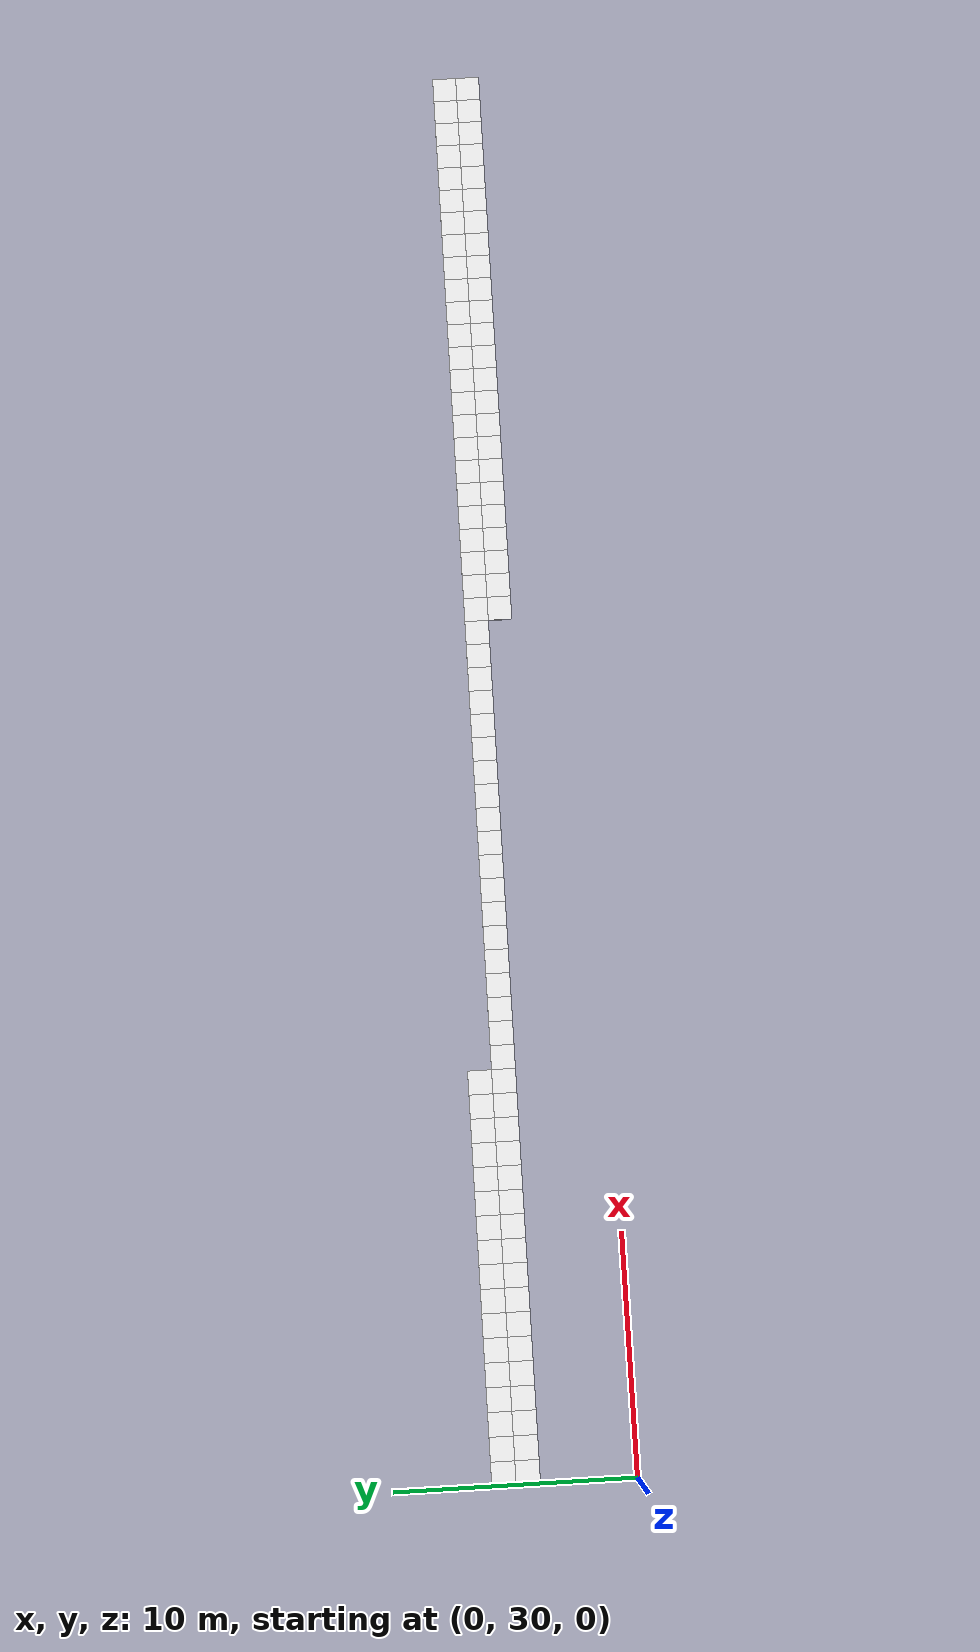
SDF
<sdf version="1.6">
 <world name="grid_world">
  <model name="cell_36_33">
   <static>true</static>
   <link name="link">
    <collision name="collision"><geometry><box><size>1 1 0.1</size></box></geometry></collision>
    <visual name="visual">
     <geometry><box><size>1 1 0.1</size></box></geometry>
     <material>
      <script><uri>file://media/materials/scripts/gazebo.material</uri><name>Gazebo/White</name></script>
     </material>
    </visual>
    <pose>36.5 33.5 0.05 0 0 0</pose>
   </link>
  </model>
  <model name="cell_37_33">
   <static>true</static>
   <link name="link">
    <collision name="collision"><geometry><box><size>1 1 0.1</size></box></geometry></collision>
    <visual name="visual">
     <geometry><box><size>1 1 0.1</size></box></geometry>
     <material>
      <script><uri>file://media/materials/scripts/gazebo.material</uri><name>Gazebo/White</name></script>
     </material>
    </visual>
    <pose>37.5 33.5 0.05 0 0 0</pose>
   </link>
  </model>
  <model name="cell_38_33">
   <static>true</static>
   <link name="link">
    <collision name="collision"><geometry><box><size>1 1 0.1</size></box></geometry></collision>
    <visual name="visual">
     <geometry><box><size>1 1 0.1</size></box></geometry>
     <material>
      <script><uri>file://media/materials/scripts/gazebo.material</uri><name>Gazebo/White</name></script>
     </material>
    </visual>
    <pose>38.5 33.5 0.05 0 0 0</pose>
   </link>
  </model>
  <model name="cell_39_33">
   <static>true</static>
   <link name="link">
    <collision name="collision"><geometry><box><size>1 1 0.1</size></box></geometry></collision>
    <visual name="visual">
     <geometry><box><size>1 1 0.1</size></box></geometry>
     <material>
      <script><uri>file://media/materials/scripts/gazebo.material</uri><name>Gazebo/White</name></script>
     </material>
    </visual>
    <pose>39.5 33.5 0.05 0 0 0</pose>
   </link>
  </model>
  <model name="cell_40_33">
   <static>true</static>
   <link name="link">
    <collision name="collision"><geometry><box><size>1 1 0.1</size></box></geometry></collision>
    <visual name="visual">
     <geometry><box><size>1 1 0.1</size></box></geometry>
     <material>
      <script><uri>file://media/materials/scripts/gazebo.material</uri><name>Gazebo/White</name></script>
     </material>
    </visual>
    <pose>40.5 33.5 0.05 0 0 0</pose>
   </link>
  </model>
  <model name="cell_41_33">
   <static>true</static>
   <link name="link">
    <collision name="collision"><geometry><box><size>1 1 0.1</size></box></geometry></collision>
    <visual name="visual">
     <geometry><box><size>1 1 0.1</size></box></geometry>
     <material>
      <script><uri>file://media/materials/scripts/gazebo.material</uri><name>Gazebo/White</name></script>
     </material>
    </visual>
    <pose>41.5 33.5 0.05 0 0 0</pose>
   </link>
  </model>
  <model name="cell_42_33">
   <static>true</static>
   <link name="link">
    <collision name="collision"><geometry><box><size>1 1 0.1</size></box></geometry></collision>
    <visual name="visual">
     <geometry><box><size>1 1 0.1</size></box></geometry>
     <material>
      <script><uri>file://media/materials/scripts/gazebo.material</uri><name>Gazebo/White</name></script>
     </material>
    </visual>
    <pose>42.5 33.5 0.05 0 0 0</pose>
   </link>
  </model>
  <model name="cell_43_33">
   <static>true</static>
   <link name="link">
    <collision name="collision"><geometry><box><size>1 1 0.1</size></box></geometry></collision>
    <visual name="visual">
     <geometry><box><size>1 1 0.1</size></box></geometry>
     <material>
      <script><uri>file://media/materials/scripts/gazebo.material</uri><name>Gazebo/White</name></script>
     </material>
    </visual>
    <pose>43.5 33.5 0.05 0 0 0</pose>
   </link>
  </model>
  <model name="cell_44_33">
   <static>true</static>
   <link name="link">
    <collision name="collision"><geometry><box><size>1 1 0.1</size></box></geometry></collision>
    <visual name="visual">
     <geometry><box><size>1 1 0.1</size></box></geometry>
     <material>
      <script><uri>file://media/materials/scripts/gazebo.material</uri><name>Gazebo/White</name></script>
     </material>
    </visual>
    <pose>44.5 33.5 0.05 0 0 0</pose>
   </link>
  </model>
  <model name="cell_45_33">
   <static>true</static>
   <link name="link">
    <collision name="collision"><geometry><box><size>1 1 0.1</size></box></geometry></collision>
    <visual name="visual">
     <geometry><box><size>1 1 0.1</size></box></geometry>
     <material>
      <script><uri>file://media/materials/scripts/gazebo.material</uri><name>Gazebo/White</name></script>
     </material>
    </visual>
    <pose>45.5 33.5 0.05 0 0 0</pose>
   </link>
  </model>
  <model name="cell_46_33">
   <static>true</static>
   <link name="link">
    <collision name="collision"><geometry><box><size>1 1 0.1</size></box></geometry></collision>
    <visual name="visual">
     <geometry><box><size>1 1 0.1</size></box></geometry>
     <material>
      <script><uri>file://media/materials/scripts/gazebo.material</uri><name>Gazebo/White</name></script>
     </material>
    </visual>
    <pose>46.5 33.5 0.05 0 0 0</pose>
   </link>
  </model>
  <model name="cell_47_33">
   <static>true</static>
   <link name="link">
    <collision name="collision"><geometry><box><size>1 1 0.1</size></box></geometry></collision>
    <visual name="visual">
     <geometry><box><size>1 1 0.1</size></box></geometry>
     <material>
      <script><uri>file://media/materials/scripts/gazebo.material</uri><name>Gazebo/White</name></script>
     </material>
    </visual>
    <pose>47.5 33.5 0.05 0 0 0</pose>
   </link>
  </model>
  <model name="cell_48_33">
   <static>true</static>
   <link name="link">
    <collision name="collision"><geometry><box><size>1 1 0.1</size></box></geometry></collision>
    <visual name="visual">
     <geometry><box><size>1 1 0.1</size></box></geometry>
     <material>
      <script><uri>file://media/materials/scripts/gazebo.material</uri><name>Gazebo/White</name></script>
     </material>
    </visual>
    <pose>48.5 33.5 0.05 0 0 0</pose>
   </link>
  </model>
  <model name="cell_49_33">
   <static>true</static>
   <link name="link">
    <collision name="collision"><geometry><box><size>1 1 0.1</size></box></geometry></collision>
    <visual name="visual">
     <geometry><box><size>1 1 0.1</size></box></geometry>
     <material>
      <script><uri>file://media/materials/scripts/gazebo.material</uri><name>Gazebo/White</name></script>
     </material>
    </visual>
    <pose>49.5 33.5 0.05 0 0 0</pose>
   </link>
  </model>
  <model name="cell_50_33">
   <static>true</static>
   <link name="link">
    <collision name="collision"><geometry><box><size>1 1 0.1</size></box></geometry></collision>
    <visual name="visual">
     <geometry><box><size>1 1 0.1</size></box></geometry>
     <material>
      <script><uri>file://media/materials/scripts/gazebo.material</uri><name>Gazebo/White</name></script>
     </material>
    </visual>
    <pose>50.5 33.5 0.05 0 0 0</pose>
   </link>
  </model>
  <model name="cell_51_33">
   <static>true</static>
   <link name="link">
    <collision name="collision"><geometry><box><size>1 1 0.1</size></box></geometry></collision>
    <visual name="visual">
     <geometry><box><size>1 1 0.1</size></box></geometry>
     <material>
      <script><uri>file://media/materials/scripts/gazebo.material</uri><name>Gazebo/White</name></script>
     </material>
    </visual>
    <pose>51.5 33.5 0.05 0 0 0</pose>
   </link>
  </model>
  <model name="cell_52_33">
   <static>true</static>
   <link name="link">
    <collision name="collision"><geometry><box><size>1 1 0.1</size></box></geometry></collision>
    <visual name="visual">
     <geometry><box><size>1 1 0.1</size></box></geometry>
     <material>
      <script><uri>file://media/materials/scripts/gazebo.material</uri><name>Gazebo/White</name></script>
     </material>
    </visual>
    <pose>52.5 33.5 0.05 0 0 0</pose>
   </link>
  </model>
  <model name="cell_53_33">
   <static>true</static>
   <link name="link">
    <collision name="collision"><geometry><box><size>1 1 0.1</size></box></geometry></collision>
    <visual name="visual">
     <geometry><box><size>1 1 0.1</size></box></geometry>
     <material>
      <script><uri>file://media/materials/scripts/gazebo.material</uri><name>Gazebo/White</name></script>
     </material>
    </visual>
    <pose>53.5 33.5 0.05 0 0 0</pose>
   </link>
  </model>
  <model name="cell_54_33">
   <static>true</static>
   <link name="link">
    <collision name="collision"><geometry><box><size>1 1 0.1</size></box></geometry></collision>
    <visual name="visual">
     <geometry><box><size>1 1 0.1</size></box></geometry>
     <material>
      <script><uri>file://media/materials/scripts/gazebo.material</uri><name>Gazebo/White</name></script>
     </material>
    </visual>
    <pose>54.5 33.5 0.05 0 0 0</pose>
   </link>
  </model>
  <model name="cell_55_33">
   <static>true</static>
   <link name="link">
    <collision name="collision"><geometry><box><size>1 1 0.1</size></box></geometry></collision>
    <visual name="visual">
     <geometry><box><size>1 1 0.1</size></box></geometry>
     <material>
      <script><uri>file://media/materials/scripts/gazebo.material</uri><name>Gazebo/White</name></script>
     </material>
    </visual>
    <pose>55.5 33.5 0.05 0 0 0</pose>
   </link>
  </model>
  <model name="cell_56_33">
   <static>true</static>
   <link name="link">
    <collision name="collision"><geometry><box><size>1 1 0.1</size></box></geometry></collision>
    <visual name="visual">
     <geometry><box><size>1 1 0.1</size></box></geometry>
     <material>
      <script><uri>file://media/materials/scripts/gazebo.material</uri><name>Gazebo/White</name></script>
     </material>
    </visual>
    <pose>56.5 33.5 0.05 0 0 0</pose>
   </link>
  </model>
  <model name="cell_57_33">
   <static>true</static>
   <link name="link">
    <collision name="collision"><geometry><box><size>1 1 0.1</size></box></geometry></collision>
    <visual name="visual">
     <geometry><box><size>1 1 0.1</size></box></geometry>
     <material>
      <script><uri>file://media/materials/scripts/gazebo.material</uri><name>Gazebo/White</name></script>
     </material>
    </visual>
    <pose>57.5 33.5 0.05 0 0 0</pose>
   </link>
  </model>
  <model name="cell_58_33">
   <static>true</static>
   <link name="link">
    <collision name="collision"><geometry><box><size>1 1 0.1</size></box></geometry></collision>
    <visual name="visual">
     <geometry><box><size>1 1 0.1</size></box></geometry>
     <material>
      <script><uri>file://media/materials/scripts/gazebo.material</uri><name>Gazebo/White</name></script>
     </material>
    </visual>
    <pose>58.5 33.5 0.05 0 0 0</pose>
   </link>
  </model>
  <model name="cell_59_33">
   <static>true</static>
   <link name="link">
    <collision name="collision"><geometry><box><size>1 1 0.1</size></box></geometry></collision>
    <visual name="visual">
     <geometry><box><size>1 1 0.1</size></box></geometry>
     <material>
      <script><uri>file://media/materials/scripts/gazebo.material</uri><name>Gazebo/White</name></script>
     </material>
    </visual>
    <pose>59.5 33.5 0.05 0 0 0</pose>
   </link>
  </model>
  <model name="cell_0_34">
   <static>true</static>
   <link name="link">
    <collision name="collision"><geometry><box><size>1 1 0.1</size></box></geometry></collision>
    <visual name="visual">
     <geometry><box><size>1 1 0.1</size></box></geometry>
     <material>
      <script><uri>file://media/materials/scripts/gazebo.material</uri><name>Gazebo/White</name></script>
     </material>
    </visual>
    <pose>0.5 34.5 0.05 0 0 0</pose>
   </link>
  </model>
  <model name="cell_1_34">
   <static>true</static>
   <link name="link">
    <collision name="collision"><geometry><box><size>1 1 0.1</size></box></geometry></collision>
    <visual name="visual">
     <geometry><box><size>1 1 0.1</size></box></geometry>
     <material>
      <script><uri>file://media/materials/scripts/gazebo.material</uri><name>Gazebo/White</name></script>
     </material>
    </visual>
    <pose>1.5 34.5 0.05 0 0 0</pose>
   </link>
  </model>
  <model name="cell_2_34">
   <static>true</static>
   <link name="link">
    <collision name="collision"><geometry><box><size>1 1 0.1</size></box></geometry></collision>
    <visual name="visual">
     <geometry><box><size>1 1 0.1</size></box></geometry>
     <material>
      <script><uri>file://media/materials/scripts/gazebo.material</uri><name>Gazebo/White</name></script>
     </material>
    </visual>
    <pose>2.5 34.5 0.05 0 0 0</pose>
   </link>
  </model>
  <model name="cell_3_34">
   <static>true</static>
   <link name="link">
    <collision name="collision"><geometry><box><size>1 1 0.1</size></box></geometry></collision>
    <visual name="visual">
     <geometry><box><size>1 1 0.1</size></box></geometry>
     <material>
      <script><uri>file://media/materials/scripts/gazebo.material</uri><name>Gazebo/White</name></script>
     </material>
    </visual>
    <pose>3.5 34.5 0.05 0 0 0</pose>
   </link>
  </model>
  <model name="cell_4_34">
   <static>true</static>
   <link name="link">
    <collision name="collision"><geometry><box><size>1 1 0.1</size></box></geometry></collision>
    <visual name="visual">
     <geometry><box><size>1 1 0.1</size></box></geometry>
     <material>
      <script><uri>file://media/materials/scripts/gazebo.material</uri><name>Gazebo/White</name></script>
     </material>
    </visual>
    <pose>4.5 34.5 0.05 0 0 0</pose>
   </link>
  </model>
  <model name="cell_5_34">
   <static>true</static>
   <link name="link">
    <collision name="collision"><geometry><box><size>1 1 0.1</size></box></geometry></collision>
    <visual name="visual">
     <geometry><box><size>1 1 0.1</size></box></geometry>
     <material>
      <script><uri>file://media/materials/scripts/gazebo.material</uri><name>Gazebo/White</name></script>
     </material>
    </visual>
    <pose>5.5 34.5 0.05 0 0 0</pose>
   </link>
  </model>
  <model name="cell_6_34">
   <static>true</static>
   <link name="link">
    <collision name="collision"><geometry><box><size>1 1 0.1</size></box></geometry></collision>
    <visual name="visual">
     <geometry><box><size>1 1 0.1</size></box></geometry>
     <material>
      <script><uri>file://media/materials/scripts/gazebo.material</uri><name>Gazebo/White</name></script>
     </material>
    </visual>
    <pose>6.5 34.5 0.05 0 0 0</pose>
   </link>
  </model>
  <model name="cell_7_34">
   <static>true</static>
   <link name="link">
    <collision name="collision"><geometry><box><size>1 1 0.1</size></box></geometry></collision>
    <visual name="visual">
     <geometry><box><size>1 1 0.1</size></box></geometry>
     <material>
      <script><uri>file://media/materials/scripts/gazebo.material</uri><name>Gazebo/White</name></script>
     </material>
    </visual>
    <pose>7.5 34.5 0.05 0 0 0</pose>
   </link>
  </model>
  <model name="cell_8_34">
   <static>true</static>
   <link name="link">
    <collision name="collision"><geometry><box><size>1 1 0.1</size></box></geometry></collision>
    <visual name="visual">
     <geometry><box><size>1 1 0.1</size></box></geometry>
     <material>
      <script><uri>file://media/materials/scripts/gazebo.material</uri><name>Gazebo/White</name></script>
     </material>
    </visual>
    <pose>8.5 34.5 0.05 0 0 0</pose>
   </link>
  </model>
  <model name="cell_9_34">
   <static>true</static>
   <link name="link">
    <collision name="collision"><geometry><box><size>1 1 0.1</size></box></geometry></collision>
    <visual name="visual">
     <geometry><box><size>1 1 0.1</size></box></geometry>
     <material>
      <script><uri>file://media/materials/scripts/gazebo.material</uri><name>Gazebo/White</name></script>
     </material>
    </visual>
    <pose>9.5 34.5 0.05 0 0 0</pose>
   </link>
  </model>
  <model name="cell_10_34">
   <static>true</static>
   <link name="link">
    <collision name="collision"><geometry><box><size>1 1 0.1</size></box></geometry></collision>
    <visual name="visual">
     <geometry><box><size>1 1 0.1</size></box></geometry>
     <material>
      <script><uri>file://media/materials/scripts/gazebo.material</uri><name>Gazebo/White</name></script>
     </material>
    </visual>
    <pose>10.5 34.5 0.05 0 0 0</pose>
   </link>
  </model>
  <model name="cell_11_34">
   <static>true</static>
   <link name="link">
    <collision name="collision"><geometry><box><size>1 1 0.1</size></box></geometry></collision>
    <visual name="visual">
     <geometry><box><size>1 1 0.1</size></box></geometry>
     <material>
      <script><uri>file://media/materials/scripts/gazebo.material</uri><name>Gazebo/White</name></script>
     </material>
    </visual>
    <pose>11.5 34.5 0.05 0 0 0</pose>
   </link>
  </model>
  <model name="cell_12_34">
   <static>true</static>
   <link name="link">
    <collision name="collision"><geometry><box><size>1 1 0.1</size></box></geometry></collision>
    <visual name="visual">
     <geometry><box><size>1 1 0.1</size></box></geometry>
     <material>
      <script><uri>file://media/materials/scripts/gazebo.material</uri><name>Gazebo/White</name></script>
     </material>
    </visual>
    <pose>12.5 34.5 0.05 0 0 0</pose>
   </link>
  </model>
  <model name="cell_13_34">
   <static>true</static>
   <link name="link">
    <collision name="collision"><geometry><box><size>1 1 0.1</size></box></geometry></collision>
    <visual name="visual">
     <geometry><box><size>1 1 0.1</size></box></geometry>
     <material>
      <script><uri>file://media/materials/scripts/gazebo.material</uri><name>Gazebo/White</name></script>
     </material>
    </visual>
    <pose>13.5 34.5 0.05 0 0 0</pose>
   </link>
  </model>
  <model name="cell_14_34">
   <static>true</static>
   <link name="link">
    <collision name="collision"><geometry><box><size>1 1 0.1</size></box></geometry></collision>
    <visual name="visual">
     <geometry><box><size>1 1 0.1</size></box></geometry>
     <material>
      <script><uri>file://media/materials/scripts/gazebo.material</uri><name>Gazebo/White</name></script>
     </material>
    </visual>
    <pose>14.5 34.5 0.05 0 0 0</pose>
   </link>
  </model>
  <model name="cell_15_34">
   <static>true</static>
   <link name="link">
    <collision name="collision"><geometry><box><size>1 1 0.1</size></box></geometry></collision>
    <visual name="visual">
     <geometry><box><size>1 1 0.1</size></box></geometry>
     <material>
      <script><uri>file://media/materials/scripts/gazebo.material</uri><name>Gazebo/White</name></script>
     </material>
    </visual>
    <pose>15.5 34.5 0.05 0 0 0</pose>
   </link>
  </model>
  <model name="cell_16_34">
   <static>true</static>
   <link name="link">
    <collision name="collision"><geometry><box><size>1 1 0.1</size></box></geometry></collision>
    <visual name="visual">
     <geometry><box><size>1 1 0.1</size></box></geometry>
     <material>
      <script><uri>file://media/materials/scripts/gazebo.material</uri><name>Gazebo/White</name></script>
     </material>
    </visual>
    <pose>16.5 34.5 0.05 0 0 0</pose>
   </link>
  </model>
  <model name="cell_17_34">
   <static>true</static>
   <link name="link">
    <collision name="collision"><geometry><box><size>1 1 0.1</size></box></geometry></collision>
    <visual name="visual">
     <geometry><box><size>1 1 0.1</size></box></geometry>
     <material>
      <script><uri>file://media/materials/scripts/gazebo.material</uri><name>Gazebo/White</name></script>
     </material>
    </visual>
    <pose>17.5 34.5 0.05 0 0 0</pose>
   </link>
  </model>
  <model name="cell_18_34">
   <static>true</static>
   <link name="link">
    <collision name="collision"><geometry><box><size>1 1 0.1</size></box></geometry></collision>
    <visual name="visual">
     <geometry><box><size>1 1 0.1</size></box></geometry>
     <material>
      <script><uri>file://media/materials/scripts/gazebo.material</uri><name>Gazebo/White</name></script>
     </material>
    </visual>
    <pose>18.5 34.5 0.05 0 0 0</pose>
   </link>
  </model>
  <model name="cell_19_34">
   <static>true</static>
   <link name="link">
    <collision name="collision"><geometry><box><size>1 1 0.1</size></box></geometry></collision>
    <visual name="visual">
     <geometry><box><size>1 1 0.1</size></box></geometry>
     <material>
      <script><uri>file://media/materials/scripts/gazebo.material</uri><name>Gazebo/White</name></script>
     </material>
    </visual>
    <pose>19.5 34.5 0.05 0 0 0</pose>
   </link>
  </model>
  <model name="cell_20_34">
   <static>true</static>
   <link name="link">
    <collision name="collision"><geometry><box><size>1 1 0.1</size></box></geometry></collision>
    <visual name="visual">
     <geometry><box><size>1 1 0.1</size></box></geometry>
     <material>
      <script><uri>file://media/materials/scripts/gazebo.material</uri><name>Gazebo/White</name></script>
     </material>
    </visual>
    <pose>20.5 34.5 0.05 0 0 0</pose>
   </link>
  </model>
  <model name="cell_21_34">
   <static>true</static>
   <link name="link">
    <collision name="collision"><geometry><box><size>1 1 0.1</size></box></geometry></collision>
    <visual name="visual">
     <geometry><box><size>1 1 0.1</size></box></geometry>
     <material>
      <script><uri>file://media/materials/scripts/gazebo.material</uri><name>Gazebo/White</name></script>
     </material>
    </visual>
    <pose>21.5 34.5 0.05 0 0 0</pose>
   </link>
  </model>
  <model name="cell_22_34">
   <static>true</static>
   <link name="link">
    <collision name="collision"><geometry><box><size>1 1 0.1</size></box></geometry></collision>
    <visual name="visual">
     <geometry><box><size>1 1 0.1</size></box></geometry>
     <material>
      <script><uri>file://media/materials/scripts/gazebo.material</uri><name>Gazebo/White</name></script>
     </material>
    </visual>
    <pose>22.5 34.5 0.05 0 0 0</pose>
   </link>
  </model>
  <model name="cell_23_34">
   <static>true</static>
   <link name="link">
    <collision name="collision"><geometry><box><size>1 1 0.1</size></box></geometry></collision>
    <visual name="visual">
     <geometry><box><size>1 1 0.1</size></box></geometry>
     <material>
      <script><uri>file://media/materials/scripts/gazebo.material</uri><name>Gazebo/White</name></script>
     </material>
    </visual>
    <pose>23.5 34.5 0.05 0 0 0</pose>
   </link>
  </model>
  <model name="cell_24_34">
   <static>true</static>
   <link name="link">
    <collision name="collision"><geometry><box><size>1 1 0.1</size></box></geometry></collision>
    <visual name="visual">
     <geometry><box><size>1 1 0.1</size></box></geometry>
     <material>
      <script><uri>file://media/materials/scripts/gazebo.material</uri><name>Gazebo/White</name></script>
     </material>
    </visual>
    <pose>24.5 34.5 0.05 0 0 0</pose>
   </link>
  </model>
  <model name="cell_25_34">
   <static>true</static>
   <link name="link">
    <collision name="collision"><geometry><box><size>1 1 0.1</size></box></geometry></collision>
    <visual name="visual">
     <geometry><box><size>1 1 0.1</size></box></geometry>
     <material>
      <script><uri>file://media/materials/scripts/gazebo.material</uri><name>Gazebo/White</name></script>
     </material>
    </visual>
    <pose>25.5 34.5 0.05 0 0 0</pose>
   </link>
  </model>
  <model name="cell_26_34">
   <static>true</static>
   <link name="link">
    <collision name="collision"><geometry><box><size>1 1 0.1</size></box></geometry></collision>
    <visual name="visual">
     <geometry><box><size>1 1 0.1</size></box></geometry>
     <material>
      <script><uri>file://media/materials/scripts/gazebo.material</uri><name>Gazebo/White</name></script>
     </material>
    </visual>
    <pose>26.5 34.5 0.05 0 0 0</pose>
   </link>
  </model>
  <model name="cell_27_34">
   <static>true</static>
   <link name="link">
    <collision name="collision"><geometry><box><size>1 1 0.1</size></box></geometry></collision>
    <visual name="visual">
     <geometry><box><size>1 1 0.1</size></box></geometry>
     <material>
      <script><uri>file://media/materials/scripts/gazebo.material</uri><name>Gazebo/White</name></script>
     </material>
    </visual>
    <pose>27.5 34.5 0.05 0 0 0</pose>
   </link>
  </model>
  <model name="cell_28_34">
   <static>true</static>
   <link name="link">
    <collision name="collision"><geometry><box><size>1 1 0.1</size></box></geometry></collision>
    <visual name="visual">
     <geometry><box><size>1 1 0.1</size></box></geometry>
     <material>
      <script><uri>file://media/materials/scripts/gazebo.material</uri><name>Gazebo/White</name></script>
     </material>
    </visual>
    <pose>28.5 34.5 0.05 0 0 0</pose>
   </link>
  </model>
  <model name="cell_29_34">
   <static>true</static>
   <link name="link">
    <collision name="collision"><geometry><box><size>1 1 0.1</size></box></geometry></collision>
    <visual name="visual">
     <geometry><box><size>1 1 0.1</size></box></geometry>
     <material>
      <script><uri>file://media/materials/scripts/gazebo.material</uri><name>Gazebo/White</name></script>
     </material>
    </visual>
    <pose>29.5 34.5 0.05 0 0 0</pose>
   </link>
  </model>
  <model name="cell_30_34">
   <static>true</static>
   <link name="link">
    <collision name="collision"><geometry><box><size>1 1 0.1</size></box></geometry></collision>
    <visual name="visual">
     <geometry><box><size>1 1 0.1</size></box></geometry>
     <material>
      <script><uri>file://media/materials/scripts/gazebo.material</uri><name>Gazebo/White</name></script>
     </material>
    </visual>
    <pose>30.5 34.5 0.05 0 0 0</pose>
   </link>
  </model>
  <model name="cell_31_34">
   <static>true</static>
   <link name="link">
    <collision name="collision"><geometry><box><size>1 1 0.1</size></box></geometry></collision>
    <visual name="visual">
     <geometry><box><size>1 1 0.1</size></box></geometry>
     <material>
      <script><uri>file://media/materials/scripts/gazebo.material</uri><name>Gazebo/White</name></script>
     </material>
    </visual>
    <pose>31.5 34.5 0.05 0 0 0</pose>
   </link>
  </model>
  <model name="cell_32_34">
   <static>true</static>
   <link name="link">
    <collision name="collision"><geometry><box><size>1 1 0.1</size></box></geometry></collision>
    <visual name="visual">
     <geometry><box><size>1 1 0.1</size></box></geometry>
     <material>
      <script><uri>file://media/materials/scripts/gazebo.material</uri><name>Gazebo/White</name></script>
     </material>
    </visual>
    <pose>32.5 34.5 0.05 0 0 0</pose>
   </link>
  </model>
  <model name="cell_33_34">
   <static>true</static>
   <link name="link">
    <collision name="collision"><geometry><box><size>1 1 0.1</size></box></geometry></collision>
    <visual name="visual">
     <geometry><box><size>1 1 0.1</size></box></geometry>
     <material>
      <script><uri>file://media/materials/scripts/gazebo.material</uri><name>Gazebo/White</name></script>
     </material>
    </visual>
    <pose>33.5 34.5 0.05 0 0 0</pose>
   </link>
  </model>
  <model name="cell_34_34">
   <static>true</static>
   <link name="link">
    <collision name="collision"><geometry><box><size>1 1 0.1</size></box></geometry></collision>
    <visual name="visual">
     <geometry><box><size>1 1 0.1</size></box></geometry>
     <material>
      <script><uri>file://media/materials/scripts/gazebo.material</uri><name>Gazebo/White</name></script>
     </material>
    </visual>
    <pose>34.5 34.5 0.05 0 0 0</pose>
   </link>
  </model>
  <model name="cell_35_34">
   <static>true</static>
   <link name="link">
    <collision name="collision"><geometry><box><size>1 1 0.1</size></box></geometry></collision>
    <visual name="visual">
     <geometry><box><size>1 1 0.1</size></box></geometry>
     <material>
      <script><uri>file://media/materials/scripts/gazebo.material</uri><name>Gazebo/White</name></script>
     </material>
    </visual>
    <pose>35.5 34.5 0.05 0 0 0</pose>
   </link>
  </model>
  <model name="cell_36_34">
   <static>true</static>
   <link name="link">
    <collision name="collision"><geometry><box><size>1 1 0.1</size></box></geometry></collision>
    <visual name="visual">
     <geometry><box><size>1 1 0.1</size></box></geometry>
     <material>
      <script><uri>file://media/materials/scripts/gazebo.material</uri><name>Gazebo/White</name></script>
     </material>
    </visual>
    <pose>36.5 34.5 0.05 0 0 0</pose>
   </link>
  </model>
  <model name="cell_37_34">
   <static>true</static>
   <link name="link">
    <collision name="collision"><geometry><box><size>1 1 0.1</size></box></geometry></collision>
    <visual name="visual">
     <geometry><box><size>1 1 0.1</size></box></geometry>
     <material>
      <script><uri>file://media/materials/scripts/gazebo.material</uri><name>Gazebo/White</name></script>
     </material>
    </visual>
    <pose>37.5 34.5 0.05 0 0 0</pose>
   </link>
  </model>
  <model name="cell_38_34">
   <static>true</static>
   <link name="link">
    <collision name="collision"><geometry><box><size>1 1 0.1</size></box></geometry></collision>
    <visual name="visual">
     <geometry><box><size>1 1 0.1</size></box></geometry>
     <material>
      <script><uri>file://media/materials/scripts/gazebo.material</uri><name>Gazebo/White</name></script>
     </material>
    </visual>
    <pose>38.5 34.5 0.05 0 0 0</pose>
   </link>
  </model>
  <model name="cell_39_34">
   <static>true</static>
   <link name="link">
    <collision name="collision"><geometry><box><size>1 1 0.1</size></box></geometry></collision>
    <visual name="visual">
     <geometry><box><size>1 1 0.1</size></box></geometry>
     <material>
      <script><uri>file://media/materials/scripts/gazebo.material</uri><name>Gazebo/White</name></script>
     </material>
    </visual>
    <pose>39.5 34.5 0.05 0 0 0</pose>
   </link>
  </model>
  <model name="cell_40_34">
   <static>true</static>
   <link name="link">
    <collision name="collision"><geometry><box><size>1 1 0.1</size></box></geometry></collision>
    <visual name="visual">
     <geometry><box><size>1 1 0.1</size></box></geometry>
     <material>
      <script><uri>file://media/materials/scripts/gazebo.material</uri><name>Gazebo/White</name></script>
     </material>
    </visual>
    <pose>40.5 34.5 0.05 0 0 0</pose>
   </link>
  </model>
  <model name="cell_41_34">
   <static>true</static>
   <link name="link">
    <collision name="collision"><geometry><box><size>1 1 0.1</size></box></geometry></collision>
    <visual name="visual">
     <geometry><box><size>1 1 0.1</size></box></geometry>
     <material>
      <script><uri>file://media/materials/scripts/gazebo.material</uri><name>Gazebo/White</name></script>
     </material>
    </visual>
    <pose>41.5 34.5 0.05 0 0 0</pose>
   </link>
  </model>
  <model name="cell_42_34">
   <static>true</static>
   <link name="link">
    <collision name="collision"><geometry><box><size>1 1 0.1</size></box></geometry></collision>
    <visual name="visual">
     <geometry><box><size>1 1 0.1</size></box></geometry>
     <material>
      <script><uri>file://media/materials/scripts/gazebo.material</uri><name>Gazebo/White</name></script>
     </material>
    </visual>
    <pose>42.5 34.5 0.05 0 0 0</pose>
   </link>
  </model>
  <model name="cell_43_34">
   <static>true</static>
   <link name="link">
    <collision name="collision"><geometry><box><size>1 1 0.1</size></box></geometry></collision>
    <visual name="visual">
     <geometry><box><size>1 1 0.1</size></box></geometry>
     <material>
      <script><uri>file://media/materials/scripts/gazebo.material</uri><name>Gazebo/White</name></script>
     </material>
    </visual>
    <pose>43.5 34.5 0.05 0 0 0</pose>
   </link>
  </model>
  <model name="cell_44_34">
   <static>true</static>
   <link name="link">
    <collision name="collision"><geometry><box><size>1 1 0.1</size></box></geometry></collision>
    <visual name="visual">
     <geometry><box><size>1 1 0.1</size></box></geometry>
     <material>
      <script><uri>file://media/materials/scripts/gazebo.material</uri><name>Gazebo/White</name></script>
     </material>
    </visual>
    <pose>44.5 34.5 0.05 0 0 0</pose>
   </link>
  </model>
  <model name="cell_45_34">
   <static>true</static>
   <link name="link">
    <collision name="collision"><geometry><box><size>1 1 0.1</size></box></geometry></collision>
    <visual name="visual">
     <geometry><box><size>1 1 0.1</size></box></geometry>
     <material>
      <script><uri>file://media/materials/scripts/gazebo.material</uri><name>Gazebo/White</name></script>
     </material>
    </visual>
    <pose>45.5 34.5 0.05 0 0 0</pose>
   </link>
  </model>
  <model name="cell_46_34">
   <static>true</static>
   <link name="link">
    <collision name="collision"><geometry><box><size>1 1 0.1</size></box></geometry></collision>
    <visual name="visual">
     <geometry><box><size>1 1 0.1</size></box></geometry>
     <material>
      <script><uri>file://media/materials/scripts/gazebo.material</uri><name>Gazebo/White</name></script>
     </material>
    </visual>
    <pose>46.5 34.5 0.05 0 0 0</pose>
   </link>
  </model>
  <model name="cell_47_34">
   <static>true</static>
   <link name="link">
    <collision name="collision"><geometry><box><size>1 1 0.1</size></box></geometry></collision>
    <visual name="visual">
     <geometry><box><size>1 1 0.1</size></box></geometry>
     <material>
      <script><uri>file://media/materials/scripts/gazebo.material</uri><name>Gazebo/White</name></script>
     </material>
    </visual>
    <pose>47.5 34.5 0.05 0 0 0</pose>
   </link>
  </model>
  <model name="cell_48_34">
   <static>true</static>
   <link name="link">
    <collision name="collision"><geometry><box><size>1 1 0.1</size></box></geometry></collision>
    <visual name="visual">
     <geometry><box><size>1 1 0.1</size></box></geometry>
     <material>
      <script><uri>file://media/materials/scripts/gazebo.material</uri><name>Gazebo/White</name></script>
     </material>
    </visual>
    <pose>48.5 34.5 0.05 0 0 0</pose>
   </link>
  </model>
  <model name="cell_49_34">
   <static>true</static>
   <link name="link">
    <collision name="collision"><geometry><box><size>1 1 0.1</size></box></geometry></collision>
    <visual name="visual">
     <geometry><box><size>1 1 0.1</size></box></geometry>
     <material>
      <script><uri>file://media/materials/scripts/gazebo.material</uri><name>Gazebo/White</name></script>
     </material>
    </visual>
    <pose>49.5 34.5 0.05 0 0 0</pose>
   </link>
  </model>
  <model name="cell_50_34">
   <static>true</static>
   <link name="link">
    <collision name="collision"><geometry><box><size>1 1 0.1</size></box></geometry></collision>
    <visual name="visual">
     <geometry><box><size>1 1 0.1</size></box></geometry>
     <material>
      <script><uri>file://media/materials/scripts/gazebo.material</uri><name>Gazebo/White</name></script>
     </material>
    </visual>
    <pose>50.5 34.5 0.05 0 0 0</pose>
   </link>
  </model>
  <model name="cell_51_34">
   <static>true</static>
   <link name="link">
    <collision name="collision"><geometry><box><size>1 1 0.1</size></box></geometry></collision>
    <visual name="visual">
     <geometry><box><size>1 1 0.1</size></box></geometry>
     <material>
      <script><uri>file://media/materials/scripts/gazebo.material</uri><name>Gazebo/White</name></script>
     </material>
    </visual>
    <pose>51.5 34.5 0.05 0 0 0</pose>
   </link>
  </model>
  <model name="cell_52_34">
   <static>true</static>
   <link name="link">
    <collision name="collision"><geometry><box><size>1 1 0.1</size></box></geometry></collision>
    <visual name="visual">
     <geometry><box><size>1 1 0.1</size></box></geometry>
     <material>
      <script><uri>file://media/materials/scripts/gazebo.material</uri><name>Gazebo/White</name></script>
     </material>
    </visual>
    <pose>52.5 34.5 0.05 0 0 0</pose>
   </link>
  </model>
  <model name="cell_53_34">
   <static>true</static>
   <link name="link">
    <collision name="collision"><geometry><box><size>1 1 0.1</size></box></geometry></collision>
    <visual name="visual">
     <geometry><box><size>1 1 0.1</size></box></geometry>
     <material>
      <script><uri>file://media/materials/scripts/gazebo.material</uri><name>Gazebo/White</name></script>
     </material>
    </visual>
    <pose>53.5 34.5 0.05 0 0 0</pose>
   </link>
  </model>
  <model name="cell_54_34">
   <static>true</static>
   <link name="link">
    <collision name="collision"><geometry><box><size>1 1 0.1</size></box></geometry></collision>
    <visual name="visual">
     <geometry><box><size>1 1 0.1</size></box></geometry>
     <material>
      <script><uri>file://media/materials/scripts/gazebo.material</uri><name>Gazebo/White</name></script>
     </material>
    </visual>
    <pose>54.5 34.5 0.05 0 0 0</pose>
   </link>
  </model>
  <model name="cell_55_34">
   <static>true</static>
   <link name="link">
    <collision name="collision"><geometry><box><size>1 1 0.1</size></box></geometry></collision>
    <visual name="visual">
     <geometry><box><size>1 1 0.1</size></box></geometry>
     <material>
      <script><uri>file://media/materials/scripts/gazebo.material</uri><name>Gazebo/White</name></script>
     </material>
    </visual>
    <pose>55.5 34.5 0.05 0 0 0</pose>
   </link>
  </model>
  <model name="cell_56_34">
   <static>true</static>
   <link name="link">
    <collision name="collision"><geometry><box><size>1 1 0.1</size></box></geometry></collision>
    <visual name="visual">
     <geometry><box><size>1 1 0.1</size></box></geometry>
     <material>
      <script><uri>file://media/materials/scripts/gazebo.material</uri><name>Gazebo/White</name></script>
     </material>
    </visual>
    <pose>56.5 34.5 0.05 0 0 0</pose>
   </link>
  </model>
  <model name="cell_57_34">
   <static>true</static>
   <link name="link">
    <collision name="collision"><geometry><box><size>1 1 0.1</size></box></geometry></collision>
    <visual name="visual">
     <geometry><box><size>1 1 0.1</size></box></geometry>
     <material>
      <script><uri>file://media/materials/scripts/gazebo.material</uri><name>Gazebo/White</name></script>
     </material>
    </visual>
    <pose>57.5 34.5 0.05 0 0 0</pose>
   </link>
  </model>
  <model name="cell_58_34">
   <static>true</static>
   <link name="link">
    <collision name="collision"><geometry><box><size>1 1 0.1</size></box></geometry></collision>
    <visual name="visual">
     <geometry><box><size>1 1 0.1</size></box></geometry>
     <material>
      <script><uri>file://media/materials/scripts/gazebo.material</uri><name>Gazebo/White</name></script>
     </material>
    </visual>
    <pose>58.5 34.5 0.05 0 0 0</pose>
   </link>
  </model>
  <model name="cell_59_34">
   <static>true</static>
   <link name="link">
    <collision name="collision"><geometry><box><size>1 1 0.1</size></box></geometry></collision>
    <visual name="visual">
     <geometry><box><size>1 1 0.1</size></box></geometry>
     <material>
      <script><uri>file://media/materials/scripts/gazebo.material</uri><name>Gazebo/White</name></script>
     </material>
    </visual>
    <pose>59.5 34.5 0.05 0 0 0</pose>
   </link>
  </model>
  <model name="cell_0_35">
   <static>true</static>
   <link name="link">
    <collision name="collision"><geometry><box><size>1 1 0.1</size></box></geometry></collision>
    <visual name="visual">
     <geometry><box><size>1 1 0.1</size></box></geometry>
     <material>
      <script><uri>file://media/materials/scripts/gazebo.material</uri><name>Gazebo/White</name></script>
     </material>
    </visual>
    <pose>0.5 35.5 0.05 0 0 0</pose>
   </link>
  </model>
  <model name="cell_1_35">
   <static>true</static>
   <link name="link">
    <collision name="collision"><geometry><box><size>1 1 0.1</size></box></geometry></collision>
    <visual name="visual">
     <geometry><box><size>1 1 0.1</size></box></geometry>
     <material>
      <script><uri>file://media/materials/scripts/gazebo.material</uri><name>Gazebo/White</name></script>
     </material>
    </visual>
    <pose>1.5 35.5 0.05 0 0 0</pose>
   </link>
  </model>
  <model name="cell_2_35">
   <static>true</static>
   <link name="link">
    <collision name="collision"><geometry><box><size>1 1 0.1</size></box></geometry></collision>
    <visual name="visual">
     <geometry><box><size>1 1 0.1</size></box></geometry>
     <material>
      <script><uri>file://media/materials/scripts/gazebo.material</uri><name>Gazebo/White</name></script>
     </material>
    </visual>
    <pose>2.5 35.5 0.05 0 0 0</pose>
   </link>
  </model>
  <model name="cell_3_35">
   <static>true</static>
   <link name="link">
    <collision name="collision"><geometry><box><size>1 1 0.1</size></box></geometry></collision>
    <visual name="visual">
     <geometry><box><size>1 1 0.1</size></box></geometry>
     <material>
      <script><uri>file://media/materials/scripts/gazebo.material</uri><name>Gazebo/White</name></script>
     </material>
    </visual>
    <pose>3.5 35.5 0.05 0 0 0</pose>
   </link>
  </model>
  <model name="cell_4_35">
   <static>true</static>
   <link name="link">
    <collision name="collision"><geometry><box><size>1 1 0.1</size></box></geometry></collision>
    <visual name="visual">
     <geometry><box><size>1 1 0.1</size></box></geometry>
     <material>
      <script><uri>file://media/materials/scripts/gazebo.material</uri><name>Gazebo/White</name></script>
     </material>
    </visual>
    <pose>4.5 35.5 0.05 0 0 0</pose>
   </link>
  </model>
  <model name="cell_5_35">
   <static>true</static>
   <link name="link">
    <collision name="collision"><geometry><box><size>1 1 0.1</size></box></geometry></collision>
    <visual name="visual">
     <geometry><box><size>1 1 0.1</size></box></geometry>
     <material>
      <script><uri>file://media/materials/scripts/gazebo.material</uri><name>Gazebo/White</name></script>
     </material>
    </visual>
    <pose>5.5 35.5 0.05 0 0 0</pose>
   </link>
  </model>
  <model name="cell_6_35">
   <static>true</static>
   <link name="link">
    <collision name="collision"><geometry><box><size>1 1 0.1</size></box></geometry></collision>
    <visual name="visual">
     <geometry><box><size>1 1 0.1</size></box></geometry>
     <material>
      <script><uri>file://media/materials/scripts/gazebo.material</uri><name>Gazebo/White</name></script>
     </material>
    </visual>
    <pose>6.5 35.5 0.05 0 0 0</pose>
   </link>
  </model>
  <model name="cell_7_35">
   <static>true</static>
   <link name="link">
    <collision name="collision"><geometry><box><size>1 1 0.1</size></box></geometry></collision>
    <visual name="visual">
     <geometry><box><size>1 1 0.1</size></box></geometry>
     <material>
      <script><uri>file://media/materials/scripts/gazebo.material</uri><name>Gazebo/White</name></script>
     </material>
    </visual>
    <pose>7.5 35.5 0.05 0 0 0</pose>
   </link>
  </model>
  <model name="cell_8_35">
   <static>true</static>
   <link name="link">
    <collision name="collision"><geometry><box><size>1 1 0.1</size></box></geometry></collision>
    <visual name="visual">
     <geometry><box><size>1 1 0.1</size></box></geometry>
     <material>
      <script><uri>file://media/materials/scripts/gazebo.material</uri><name>Gazebo/White</name></script>
     </material>
    </visual>
    <pose>8.5 35.5 0.05 0 0 0</pose>
   </link>
  </model>
  <model name="cell_9_35">
   <static>true</static>
   <link name="link">
    <collision name="collision"><geometry><box><size>1 1 0.1</size></box></geometry></collision>
    <visual name="visual">
     <geometry><box><size>1 1 0.1</size></box></geometry>
     <material>
      <script><uri>file://media/materials/scripts/gazebo.material</uri><name>Gazebo/White</name></script>
     </material>
    </visual>
    <pose>9.5 35.5 0.05 0 0 0</pose>
   </link>
  </model>
  <model name="cell_10_35">
   <static>true</static>
   <link name="link">
    <collision name="collision"><geometry><box><size>1 1 0.1</size></box></geometry></collision>
    <visual name="visual">
     <geometry><box><size>1 1 0.1</size></box></geometry>
     <material>
      <script><uri>file://media/materials/scripts/gazebo.material</uri><name>Gazebo/White</name></script>
     </material>
    </visual>
    <pose>10.5 35.5 0.05 0 0 0</pose>
   </link>
  </model>
  <model name="cell_11_35">
   <static>true</static>
   <link name="link">
    <collision name="collision"><geometry><box><size>1 1 0.1</size></box></geometry></collision>
    <visual name="visual">
     <geometry><box><size>1 1 0.1</size></box></geometry>
     <material>
      <script><uri>file://media/materials/scripts/gazebo.material</uri><name>Gazebo/White</name></script>
     </material>
    </visual>
    <pose>11.5 35.5 0.05 0 0 0</pose>
   </link>
  </model>
  <model name="cell_12_35">
   <static>true</static>
   <link name="link">
    <collision name="collision"><geometry><box><size>1 1 0.1</size></box></geometry></collision>
    <visual name="visual">
     <geometry><box><size>1 1 0.1</size></box></geometry>
     <material>
      <script><uri>file://media/materials/scripts/gazebo.material</uri><name>Gazebo/White</name></script>
     </material>
    </visual>
    <pose>12.5 35.5 0.05 0 0 0</pose>
   </link>
  </model>
  <model name="cell_13_35">
   <static>true</static>
   <link name="link">
    <collision name="collision"><geometry><box><size>1 1 0.1</size></box></geometry></collision>
    <visual name="visual">
     <geometry><box><size>1 1 0.1</size></box></geometry>
     <material>
      <script><uri>file://media/materials/scripts/gazebo.material</uri><name>Gazebo/White</name></script>
     </material>
    </visual>
    <pose>13.5 35.5 0.05 0 0 0</pose>
   </link>
  </model>
  <model name="cell_14_35">
   <static>true</static>
   <link name="link">
    <collision name="collision"><geometry><box><size>1 1 0.1</size></box></geometry></collision>
    <visual name="visual">
     <geometry><box><size>1 1 0.1</size></box></geometry>
     <material>
      <script><uri>file://media/materials/scripts/gazebo.material</uri><name>Gazebo/White</name></script>
     </material>
    </visual>
    <pose>14.5 35.5 0.05 0 0 0</pose>
   </link>
  </model>
  <model name="cell_15_35">
   <static>true</static>
   <link name="link">
    <collision name="collision"><geometry><box><size>1 1 0.1</size></box></geometry></collision>
    <visual name="visual">
     <geometry><box><size>1 1 0.1</size></box></geometry>
     <material>
      <script><uri>file://media/materials/scripts/gazebo.material</uri><name>Gazebo/White</name></script>
     </material>
    </visual>
    <pose>15.5 35.5 0.05 0 0 0</pose>
   </link>
  </model>
  <model name="cell_16_35">
   <static>true</static>
   <link name="link">
    <collision name="collision"><geometry><box><size>1 1 0.1</size></box></geometry></collision>
    <visual name="visual">
     <geometry><box><size>1 1 0.1</size></box></geometry>
     <material>
      <script><uri>file://media/materials/scripts/gazebo.material</uri><name>Gazebo/White</name></script>
     </material>
    </visual>
    <pose>16.5 35.5 0.05 0 0 0</pose>
   </link>
  </model>
 </world>
</sdf>
